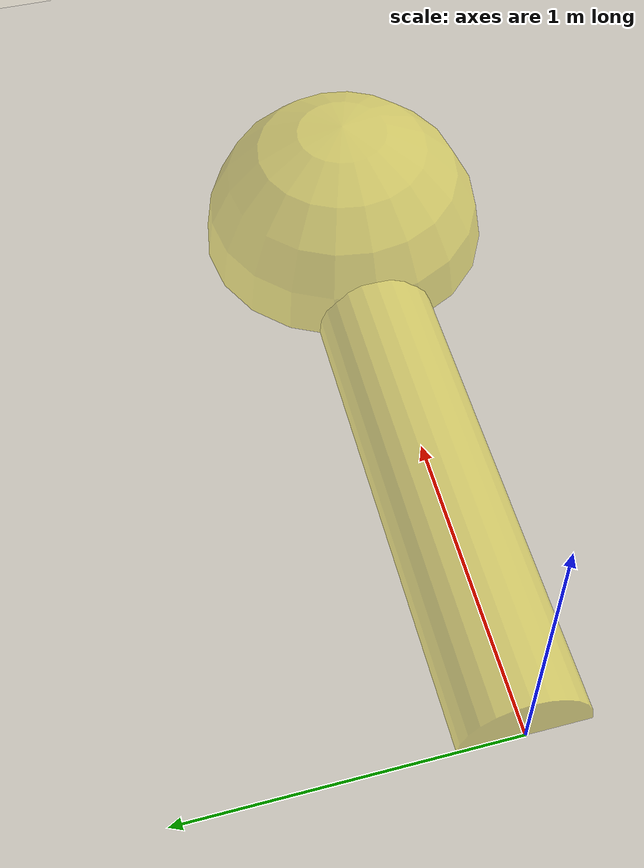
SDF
<sdf version="1.7">
 <world name="default">
  <light name="sun" type="directional">
   <pose>0 0 10 0 -0 0</pose>
   <diffuse>0.8 0.8 0.8 1</diffuse>
   <specular>0.2 0.2 0.2 1</specular>
   <attenuation>
    <range>1000</range>
    <constant>0.9</constant>
    <linear>0.01</linear>
    <quadratic>0.001</quadratic>
   </attenuation>
   <direction>-0.5 0.1 -0.9</direction>
   <spot><inner_angle>0</inner_angle><outer_angle>0</outer_angle><falloff>0</falloff></spot>
  </light>
  <model name="ground_plane">
   <static>1</static>
   <link name="link">
    <collision name="collision">
     <geometry><plane><normal>0 0 1</normal><size>100 100</size></plane></geometry>
     <surface>
      <contact><collide_bitmask>65535</collide_bitmask></contact>
      <friction><ode><mu>100</mu><mu2>50</mu2></ode></friction>
     </surface>
    </collision>
    <visual name="visual">
     <cast_shadows>0</cast_shadows>
     <geometry><plane><normal>0 0 1</normal><size>100 100</size></plane></geometry>
     <material>
      <script><uri>file://media/materials/scripts/gazebo.material</uri><name>Gazebo/Grey</name></script>
     </material>
    </visual>
   </link>
  </model>
  <model name="arrow">
   <static>0</static>
   <link name="arrow_link">
    <visual name="arrow_body">
     <cast_shadows>0</cast_shadows>
     <pose>1 0 0 0 1.5707963267948966 0</pose>
     <geometry><cylinder><radius>0.2</radius><length>2</length></cylinder></geometry>
     <material>
      <script>
       <uri>file://media/materials/scripts/gazebo.material</uri>
       <name>Gazebo/YellowTransparent</name>
      </script>
     </material>
    </visual>
    <visual name="arrow_tip">
     <pose>2 0 0 0 0 0</pose>
     <cast_shadows>0</cast_shadows>
     <geometry><sphere><radius>0.5</radius></sphere></geometry>
     <material>
      <script>
       <uri>file://media/materials/scripts/gazebo.material</uri>
       <name>Gazebo/YellowTransparent</name>
      </script>
     </material>
    </visual>
    <gravity>0</gravity>
   </link>
  </model>
  <gravity>0 0 -9.8</gravity>
  <magnetic_field>6e-06 2.3e-05 -4.2e-05</magnetic_field>
  <atmosphere type="adiabatic"/>
  <physics type="ode">
   <max_step_size>0.001</max_step_size>
   <real_time_factor>1</real_time_factor>
   <real_time_update_rate>1000</real_time_update_rate>
  </physics>
  <scene><ambient>0.4 0.4 0.4 1</ambient><background>0.7 0.7 0.7 1</background><shadows>1</shadows></scene>
  <audio><device>default</device></audio>
  <spherical_coordinates>
   <surface_model>EARTH_WGS84</surface_model>
   <latitude_deg>0</latitude_deg>
   <longitude_deg>0</longitude_deg>
   <elevation>0</elevation>
   <heading_deg>0</heading_deg>
  </spherical_coordinates>
  <plugin name="gazebo_ros_state" filename="libgazebo_ros_state.so"><update_rate>1.0</update_rate></plugin>
 </world>
</sdf>
